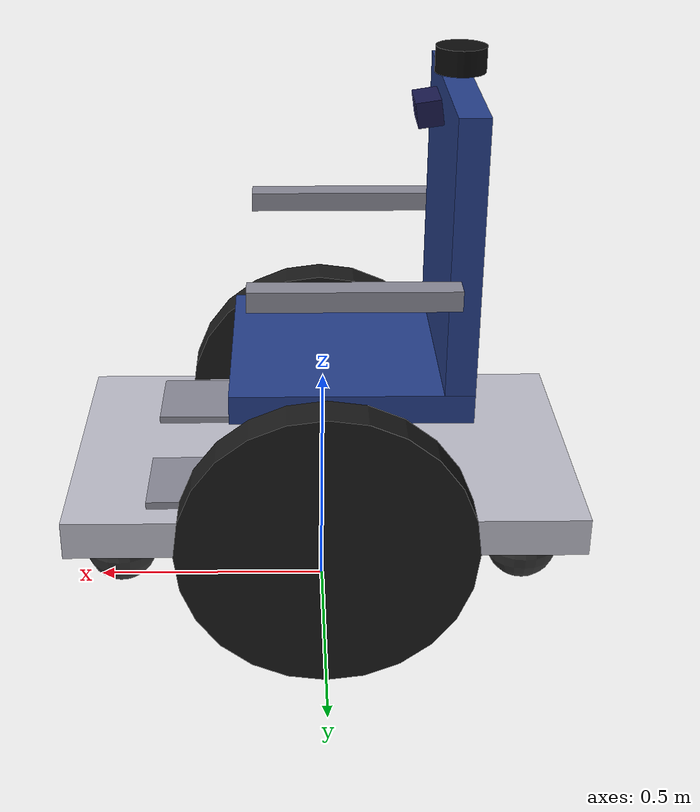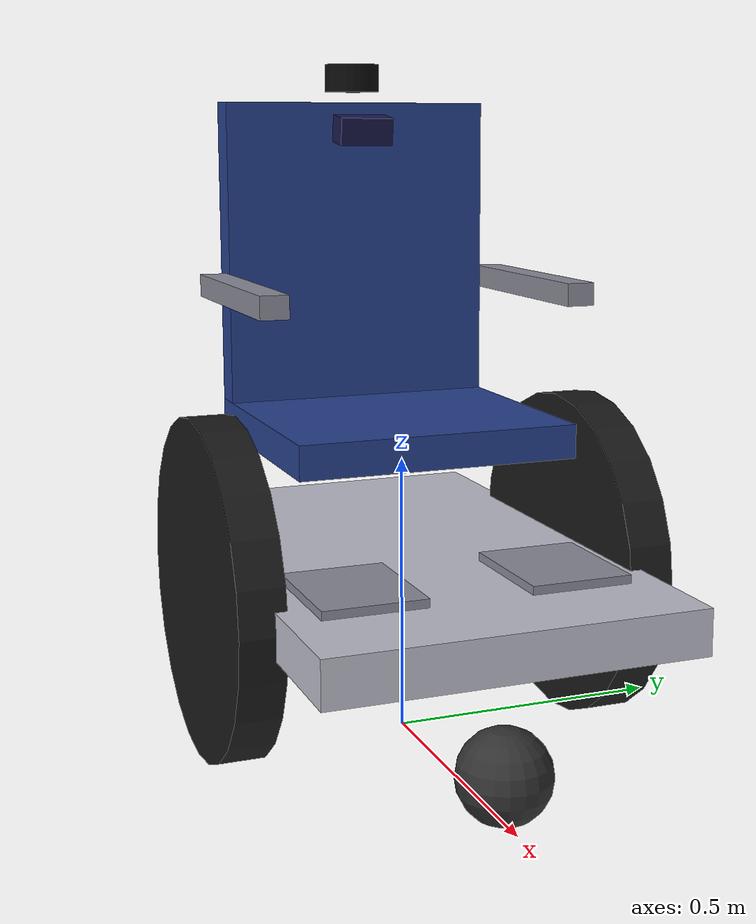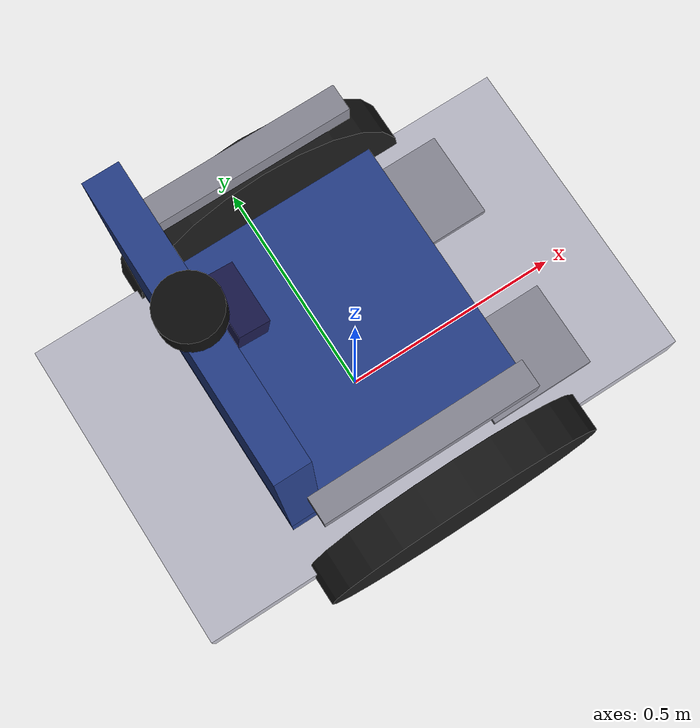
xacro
<?xml version="1.0"?>
<robot name="wheelchair_robot" xmlns:xacro="http://www.ros.org/wiki/xacro">

  <!-- Properties -->
  <xacro:property name="base_width"   value="0.65"/>
  <xacro:property name="base_length"  value="1.05"/>
  <xacro:property name="base_height"  value="0.08"/>
  <xacro:property name="base_mass"    value="20.0"/>

  <xacro:property name="wheel_radius"   value="0.30"/>
  <xacro:property name="wheel_width"    value="0.08"/>
  <xacro:property name="wheel_mass"     value="2.5"/>
  <xacro:property name="wheel_y_offset" value="0.345"/>
  <xacro:property name="wheel_x_offset" value="0.0"/>

  <xacro:property name="caster_radius" value="0.08"/>
  <xacro:property name="caster_mass"   value="0.5"/>

  <!-- Seat properties -->
  <xacro:property name="seat_width"    value="0.50"/>
  <xacro:property name="seat_length"   value="0.48"/>
  <xacro:property name="seat_thickness" value="0.06"/>
  <xacro:property name="seat_mass"     value="3.0"/>
  <!-- seat sits above base_link; base_link center is at wheel_radius height -->
  <!-- seat top surface should be ~0.48 m above ground = 0.48 - wheel_radius above base_link center -->
  <xacro:property name="seat_z"        value="0.18"/>
  <xacro:property name="seat_x"        value="-0.05"/>

  <!-- Backrest properties -->
  <xacro:property name="backrest_width"     value="0.50"/>
  <xacro:property name="backrest_height"    value="0.55"/>
  <xacro:property name="backrest_thickness" value="0.06"/>
  <xacro:property name="backrest_mass"      value="2.5"/>

  <!-- Armrest properties -->
  <xacro:property name="armrest_length"    value="0.40"/>
  <xacro:property name="armrest_width"     value="0.05"/>
  <xacro:property name="armrest_height"    value="0.04"/>
  <xacro:property name="armrest_mass"      value="0.8"/>
  <xacro:property name="armrest_y_offset"  value="0.275"/>

  <!-- Footrest properties -->
  <xacro:property name="footrest_width"    value="0.18"/>
  <xacro:property name="footrest_length"   value="0.22"/>
  <xacro:property name="footrest_thickness" value="0.03"/>
  <xacro:property name="footrest_mass"     value="0.6"/>
  <xacro:property name="footrest_y_offset" value="0.18"/>

  <!-- Sensor properties -->
  <xacro:property name="lidar_height"  value="0.05"/>
  <xacro:property name="lidar_radius"  value="0.05"/>
  <xacro:property name="camera_size"   value="0.05"/>

  <!-- Inertia -->
  <xacro:macro name="cylinder_inertia" params="m r h">
    <inertial>
      <mass value="${m}"/>
      <inertia
        ixx="${(m/12)*(3*r*r + h*h)}"
        ixy="0" ixz="0"
        iyy="${(m/12)*(3*r*r + h*h)}"
        iyz="0"
        izz="${(m/2)*r*r}"/>
    </inertial>
  </xacro:macro>

  <xacro:macro name="box_inertia" params="m w h d">
    <inertial>
      <mass value="${m}"/>
      <inertia
        ixx="${(m/12)*(h*h + d*d)}"
        ixy="0" ixz="0"
        iyy="${(m/12)*(w*w + d*d)}"
        iyz="0"
        izz="${(m/12)*(w*w + h*h)}"/>
    </inertial>
  </xacro:macro>

  <!-- Wheel -->
  <xacro:macro name="wheel" params="name y_sign">
    <link name="${name}_wheel">
      <visual>
        <origin xyz="0 0 0" rpy="1.5708 0 0"/>
        <geometry>
          <cylinder radius="${wheel_radius}" length="${wheel_width}"/>
        </geometry>
        <material name="${name}_wheel_black">
          <color rgba="0.1 0.1 0.1 1.0"/>
        </material>
      </visual>
      <collision>
        <origin xyz="0 0 0" rpy="1.5708 0 0"/>
        <geometry>
          <cylinder radius="${wheel_radius}" length="${wheel_width}"/>
        </geometry>
      </collision>
      <xacro:cylinder_inertia m="${wheel_mass}" r="${wheel_radius}" h="${wheel_width}"/>
    </link>

    <joint name="${name}_wheel_joint" type="continuous">
      <parent link="base_link"/>
      <child  link="${name}_wheel"/>
      <origin xyz="${wheel_x_offset} ${y_sign * wheel_y_offset} 0" rpy="0 0 0"/>
      <axis xyz="0 1 0"/>
      <dynamics damping="0.1" friction="0.5"/>
    </joint>

    <gazebo reference="${name}_wheel">
      <material>Gazebo/Black</material>
      <mu1>1.0</mu1>
      <mu2>1.0</mu2>
      <kp>1000000.0</kp>
      <kd>100.0</kd>
    </gazebo>
  </xacro:macro>

  <!--    base_footprint    -->
  <link name="base_footprint"/>

  <joint name="base_footprint_joint" type="fixed">
    <parent link="base_footprint"/>
    <child  link="base_link"/>
    <origin xyz="0 0 ${wheel_radius}" rpy="0 0 0"/>
  </joint>

  <!--    base_link (chassis frame)    -->
  <!-- base_link is the main chassis/frame of the wheelchair -->
  <link name="base_link">
    <visual>
      <origin xyz="0 0 0" rpy="0 0 0"/>
      <geometry>
        <box size="${base_length} ${base_width} ${base_height}"/>
      </geometry>
      <material name="wheelchair_frame_silver">
        <color rgba="0.75 0.75 0.80 1.0"/>
      </material>
    </visual>
    <collision>
      <origin xyz="0 0 0" rpy="0 0 0"/>
      <geometry>
        <box size="${base_length} ${base_width} ${base_height}"/>
      </geometry>
    </collision>
    <xacro:box_inertia m="${base_mass}" w="${base_width}" h="${base_height}" d="${base_length}"/>
  </link>

  <gazebo reference="base_link">
    <material>Gazebo/Grey</material>
  </gazebo>

  <!--    Drive Wheels    -->
  <xacro:wheel name="left"  y_sign="1"/>
  <xacro:wheel name="right" y_sign="-1"/>

  <!--    Front Caster (single)    -->
  <link name="front_caster">
    <visual>
      <origin xyz="0 0 0" rpy="0 0 0"/>
      <geometry>
        <sphere radius="${caster_radius}"/>
      </geometry>
      <material name="front_caster_dark">
        <color rgba="0.2 0.2 0.2 1.0"/>
      </material>
    </visual>
    <collision>
      <origin xyz="0 0 0" rpy="0 0 0"/>
      <geometry>
        <sphere radius="${caster_radius}"/>
      </geometry>
    </collision>
    <inertial>
      <mass value="${caster_mass}"/>
      <inertia ixx="0.002" ixy="0" ixz="0" iyy="0.002" iyz="0" izz="0.002"/>
    </inertial>
  </link>

  <joint name="front_caster_joint" type="fixed">
    <parent link="base_link"/>
    <child  link="front_caster"/>
    <origin xyz="0.45 0 ${-(wheel_radius - caster_radius)}" rpy="0 0 0"/>
  </joint>

  <gazebo reference="front_caster">
    <material>Gazebo/DarkGrey</material>
    <mu1>0.0</mu1>
    <mu2>0.0</mu2>
  </gazebo>

  <!--    Rear Caster    -->
  <link name="rear_caster">
    <visual>
      <origin xyz="0 0 0" rpy="0 0 0"/>
      <geometry>
        <sphere radius="${caster_radius}"/>
      </geometry>
      <material name="rear_caster_dark">
        <color rgba="0.2 0.2 0.2 1.0"/>
      </material>
    </visual>
    <collision>
      <origin xyz="0 0 0" rpy="0 0 0"/>
      <geometry>
        <sphere radius="${caster_radius}"/>
      </geometry>
    </collision>
    <inertial>
      <mass value="${caster_mass}"/>
      <inertia ixx="0.002" ixy="0" ixz="0" iyy="0.002" iyz="0" izz="0.002"/>
    </inertial>
  </link>

  <joint name="rear_caster_joint" type="fixed">
    <parent link="base_link"/>
    <child  link="rear_caster"/>
    <origin xyz="-0.45 0 ${-(wheel_radius - caster_radius)}" rpy="0 0 0"/>
  </joint>

  <gazebo reference="rear_caster">
    <material>Gazebo/Black</material>
    <mu1>0.0</mu1>
    <mu2>0.0</mu2>
    <kp>1000000.0</kp>
    <kd>100.0</kd>
  </gazebo>

  <!--    SEAT PAN    -->
  <link name="seat_link">
    <visual>
      <origin xyz="0 0 0" rpy="0 0 0"/>
      <geometry>
        <box size="${seat_length} ${seat_width} ${seat_thickness}"/>
      </geometry>
      <material name="seat_cushion_blue">
        <color rgba="0.15 0.25 0.55 1.0"/>
      </material>
    </visual>
    <collision>
      <origin xyz="0 0 0" rpy="0 0 0"/>
      <geometry>
        <box size="${seat_length} ${seat_width} ${seat_thickness}"/>
      </geometry>
    </collision>
    <xacro:box_inertia m="${seat_mass}" w="${seat_width}" h="${seat_thickness}" d="${seat_length}"/>
  </link>

  <joint name="seat_joint" type="fixed">
    <parent link="base_link"/>
    <child  link="seat_link"/>
    <!-- seat center: slightly rearward, raised above chassis top -->
    <origin xyz="${seat_x} 0 ${base_height/2 + seat_thickness/2 + seat_z}" rpy="0 0 0"/>
  </joint>

  <gazebo reference="seat_link">
    <material>Gazebo/Blue</material>
  </gazebo>

  <!--    BACKREST    -->
  <link name="backrest_link">
    <visual>
      <origin xyz="0 0 0" rpy="0 0 0"/>
      <geometry>
        <box size="${backrest_thickness} ${backrest_width} ${backrest_height}"/>
      </geometry>
      <material name="backrest_cushion_blue">
        <color rgba="0.15 0.25 0.55 1.0"/>
      </material>
    </visual>
    <collision>
      <origin xyz="0 0 0" rpy="0 0 0"/>
      <geometry>
        <box size="${backrest_thickness} ${backrest_width} ${backrest_height}"/>
      </geometry>
    </collision>
    <xacro:box_inertia m="${backrest_mass}" w="${backrest_width}" h="${backrest_height}" d="${backrest_thickness}"/>
  </link>

  <joint name="backrest_joint" type="fixed">
    <parent link="seat_link"/>
    <child  link="backrest_link"/>
    <!-- backrest rises from rear edge of seat -->
    <origin xyz="${-(seat_length/2 - backrest_thickness/2)} 0 ${seat_thickness/2 + backrest_height/2}" rpy="0 0 0"/>
  </joint>

  <gazebo reference="backrest_link">
    <material>Gazebo/Blue</material>
  </gazebo>

  <!--    LEFT ARMREST    -->
  <link name="left_armrest_link">
    <visual>
      <origin xyz="0 0 0" rpy="0 0 0"/>
      <geometry>
        <box size="${armrest_length} ${armrest_width} ${armrest_height}"/>
      </geometry>
      <material name="left_armrest_grey">
        <color rgba="0.55 0.55 0.60 1.0"/>
      </material>
    </visual>
    <collision>
      <origin xyz="0 0 0" rpy="0 0 0"/>
      <geometry>
        <box size="${armrest_length} ${armrest_width} ${armrest_height}"/>
      </geometry>
    </collision>
    <xacro:box_inertia m="${armrest_mass}" w="${armrest_width}" h="${armrest_height}" d="${armrest_length}"/>
  </link>

  <joint name="left_armrest_joint" type="fixed">
    <parent link="seat_link"/>
    <child  link="left_armrest_link"/>
    <!-- armrest sits at seat level + small vertical post height -->
    <origin xyz="0 ${armrest_y_offset} ${seat_thickness/2 + 0.22}" rpy="0 0 0"/>
  </joint>

  <gazebo reference="left_armrest_link">
    <material>Gazebo/Grey</material>
  </gazebo>

  <!--    RIGHT ARMREST    -->
  <link name="right_armrest_link">
    <visual>
      <origin xyz="0 0 0" rpy="0 0 0"/>
      <geometry>
        <box size="${armrest_length} ${armrest_width} ${armrest_height}"/>
      </geometry>
      <material name="right_armrest_grey">
        <color rgba="0.55 0.55 0.60 1.0"/>
      </material>
    </visual>
    <collision>
      <origin xyz="0 0 0" rpy="0 0 0"/>
      <geometry>
        <box size="${armrest_length} ${armrest_width} ${armrest_height}"/>
      </geometry>
    </collision>
    <xacro:box_inertia m="${armrest_mass}" w="${armrest_width}" h="${armrest_height}" d="${armrest_length}"/>
  </link>

  <joint name="right_armrest_joint" type="fixed">
    <parent link="seat_link"/>
    <child  link="right_armrest_link"/>
    <origin xyz="0 ${-armrest_y_offset} ${seat_thickness/2 + 0.22}" rpy="0 0 0"/>
  </joint>

  <gazebo reference="right_armrest_link">
    <material>Gazebo/Grey</material>
  </gazebo>

  <!--    LEFT FOOTREST    -->
  <link name="left_footrest_link">
    <visual>
      <origin xyz="0 0 0" rpy="0 0 0"/>
      <geometry>
        <box size="${footrest_length} ${footrest_width} ${footrest_thickness}"/>
      </geometry>
      <material name="left_footrest_grey">
        <color rgba="0.55 0.55 0.60 1.0"/>
      </material>
    </visual>
    <collision>
      <origin xyz="0 0 0" rpy="0 0 0"/>
      <geometry>
        <box size="${footrest_length} ${footrest_width} ${footrest_thickness}"/>
      </geometry>
    </collision>
    <xacro:box_inertia m="${footrest_mass}" w="${footrest_width}" h="${footrest_thickness}" d="${footrest_length}"/>
  </link>

  <joint name="left_footrest_joint" type="fixed">
    <parent link="seat_link"/>
    <child  link="left_footrest_link"/>
    <!-- footrests hang at front of seat, angled down -->
    <origin xyz="${seat_length/2 + footrest_length/2 - 0.05} ${footrest_y_offset} ${-(seat_thickness/2 + 0.18)}" rpy="0 0 0"/>
  </joint>

  <gazebo reference="left_footrest_link">
    <material>Gazebo/Grey</material>
  </gazebo>

  <!--    RIGHT FOOTREST    -->
  <link name="right_footrest_link">
    <visual>
      <origin xyz="0 0 0" rpy="0 0 0"/>
      <geometry>
        <box size="${footrest_length} ${footrest_width} ${footrest_thickness}"/>
      </geometry>
      <material name="right_footrest_grey">
        <color rgba="0.55 0.55 0.60 1.0"/>
      </material>
    </visual>
    <collision>
      <origin xyz="0 0 0" rpy="0 0 0"/>
      <geometry>
        <box size="${footrest_length} ${footrest_width} ${footrest_thickness}"/>
      </geometry>
    </collision>
    <xacro:box_inertia m="${footrest_mass}" w="${footrest_width}" h="${footrest_thickness}" d="${footrest_length}"/>
  </link>

  <joint name="right_footrest_joint" type="fixed">
    <parent link="seat_link"/>
    <child  link="right_footrest_link"/>
    <origin xyz="${seat_length/2 + footrest_length/2 - 0.05} ${-footrest_y_offset} ${-(seat_thickness/2 + 0.18)}" rpy="0 0 0"/>
  </joint>

  <gazebo reference="right_footrest_link">
    <material>Gazebo/Grey</material>
  </gazebo>

  <!--    LiDAR Sensor    -->
  <link name="lidar_link">
    <visual>
      <origin xyz="0 0 0" rpy="0 0 0"/>
      <geometry>
        <cylinder radius="${lidar_radius}" length="${lidar_height}"/>
      </geometry>
      <material name="lidar_black">
        <color rgba="0.05 0.05 0.05 1.0"/>
      </material>
    </visual>
    <collision>
      <origin xyz="0 0 0" rpy="0 0 0"/>
      <geometry>
        <cylinder radius="${lidar_radius}" length="${lidar_height}"/>
      </geometry>
    </collision>
    <inertial>
      <mass value="0.2"/>
      <inertia ixx="0.0001" ixy="0" ixz="0" iyy="0.0001" iyz="0" izz="0.0001"/>
    </inertial>
  </link>

  <!-- lidar mounts on top of backrest -->
  <joint name="lidar_joint" type="fixed">
    <parent link="backrest_link"/>
    <child  link="lidar_link"/>
    <origin xyz="0 0 ${backrest_height/2 + lidar_height/2 + 0.02}" rpy="0 0 0"/>
  </joint>

  <gazebo reference="lidar_link">
    <material>Gazebo/Black</material>
    <sensor name="lidar" type="ray">
      <always_on>true</always_on>
      <visualize>true</visualize>
      <update_rate>10</update_rate>
      <ray>
        <scan>
          <horizontal>
            <samples>360</samples>
            <resolution>1</resolution>
            <min_angle>-3.14159</min_angle>
            <max_angle>3.14159</max_angle>
          </horizontal>
        </scan>
        <range>
          <min>0.12</min>
          <max>20.0</max>
          <resolution>0.01</resolution>
        </range>
        <noise>
          <type>gaussian</type>
          <mean>0.0</mean>
          <stddev>0.01</stddev>
        </noise>
      </ray>
      <plugin name="lidar_plugin" filename="libgazebo_ros_ray_sensor.so">
        <ros>
          <remapping>~/out:=/scan</remapping>
        </ros>
        <output_type>sensor_msgs/LaserScan</output_type>
        <frame_name>lidar_link</frame_name>
      </plugin>
    </sensor>
  </gazebo>

  <!--    Camera Sensor    -->
  <link name="camera_link">
    <visual>
      <origin xyz="0 0 0" rpy="0 0 0"/>
      <geometry>
        <box size="0.05 0.10 0.05"/>
      </geometry>
      <material name="camera_dark_blue">
        <color rgba="0.1 0.1 0.3 1.0"/>
      </material>
    </visual>
    <collision>
      <origin xyz="0 0 0" rpy="0 0 0"/>
      <geometry>
        <box size="0.05 0.10 0.05"/>
      </geometry>
    </collision>
    <inertial>
      <mass value="0.1"/>
      <inertia ixx="0.00005" ixy="0" ixz="0" iyy="0.00005" iyz="0" izz="0.00005"/>
    </inertial>
  </link>

  <link name="camera_optical_link"/>

  <!-- camera mounts on top of backrest, facing forward -->
  <joint name="camera_joint" type="fixed">
    <parent link="backrest_link"/>
    <child  link="camera_link"/>
    <origin xyz="${backrest_thickness/2 + 0.03} 0 ${backrest_height/2 - 0.05}" rpy="0 0.15 0"/>
  </joint>

  <joint name="camera_optical_joint" type="fixed">
    <parent link="camera_link"/>
    <child  link="camera_optical_link"/>
    <origin xyz="0 0 0" rpy="-1.5708 0 -1.5708"/>
  </joint>

  <gazebo reference="camera_link">
    <material>Gazebo/Blue</material>
    <sensor name="front_camera" type="camera">
      <always_on>true</always_on>
      <visualize>true</visualize>
      <update_rate>30</update_rate>
      <camera>
        <horizontal_fov>1.3962634</horizontal_fov>
        <image>
          <width>640</width>
          <height>480</height>
          <format>R8G8B8</format>
        </image>
        <clip>
          <near>0.05</near>
          <far>100.0</far>
        </clip>
        <noise>
          <type>gaussian</type>
          <mean>0.0</mean>
          <stddev>0.007</stddev>
        </noise>
      </camera>
      <plugin name="camera_plugin" filename="libgazebo_ros_camera.so">
        <ros>
          <remapping>image_raw:=/front_camera/image_raw</remapping>
          <remapping>camera_info:=/front_camera/camera_info</remapping>
        </ros>
        <camera_name>front_camera</camera_name>
        <frame_name>camera_optical_link</frame_name>
      </plugin>
    </sensor>
  </gazebo>

  <!--    Differential Drive Plugin    -->
  <gazebo>
    <plugin name="diff_drive" filename="libgazebo_ros_diff_drive.so">
      <ros>
        <remapping>cmd_vel:=/cmd_vel</remapping>
        <remapping>odom:=/odom</remapping>
      </ros>
      <left_joint>left_wheel_joint</left_joint>
      <right_joint>right_wheel_joint</right_joint>
      <wheel_separation>0.69</wheel_separation>
      <wheel_diameter>0.60</wheel_diameter>
      <max_wheel_torque>50.0</max_wheel_torque>
      <max_wheel_acceleration>2.0</max_wheel_acceleration>
      <publish_odom>true</publish_odom>
      <publish_odom_tf>true</publish_odom_tf>
      <publish_wheel_tf>false</publish_wheel_tf>
      <odometry_frame>odom</odometry_frame>
      <robot_base_frame>base_footprint</robot_base_frame>
    </plugin>

    <plugin name="joint_state_publisher" filename="libgazebo_ros_joint_state_publisher.so">
      <ros>
        <remapping>~/out:=/joint_states</remapping>
      </ros>
      <update_rate>50</update_rate>
      <joint_name>left_wheel_joint</joint_name>
      <joint_name>right_wheel_joint</joint_name>
    </plugin>
  </gazebo>

</robot>
